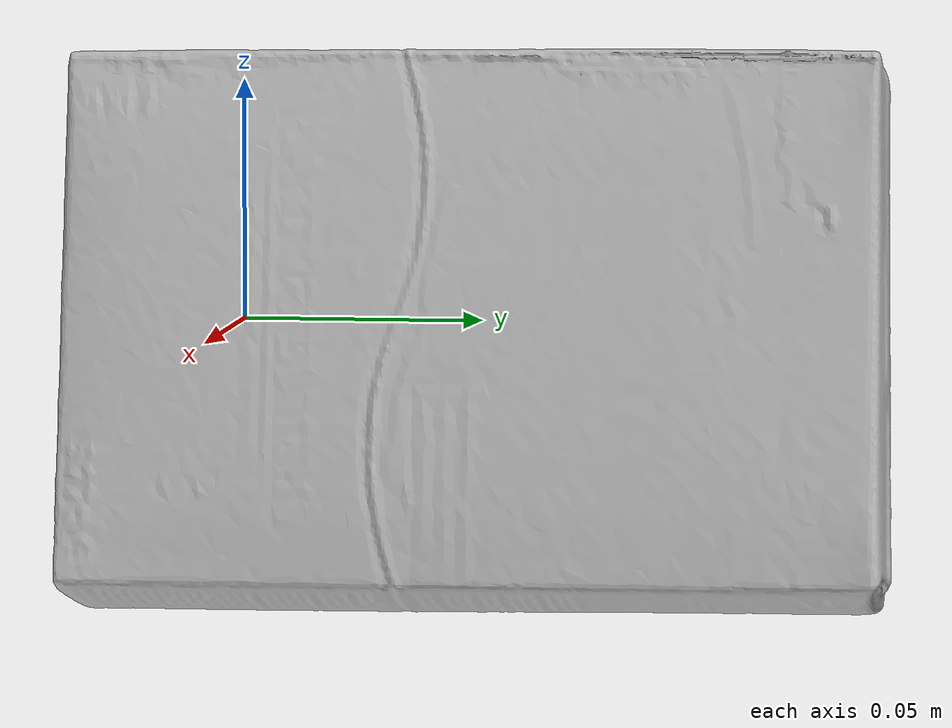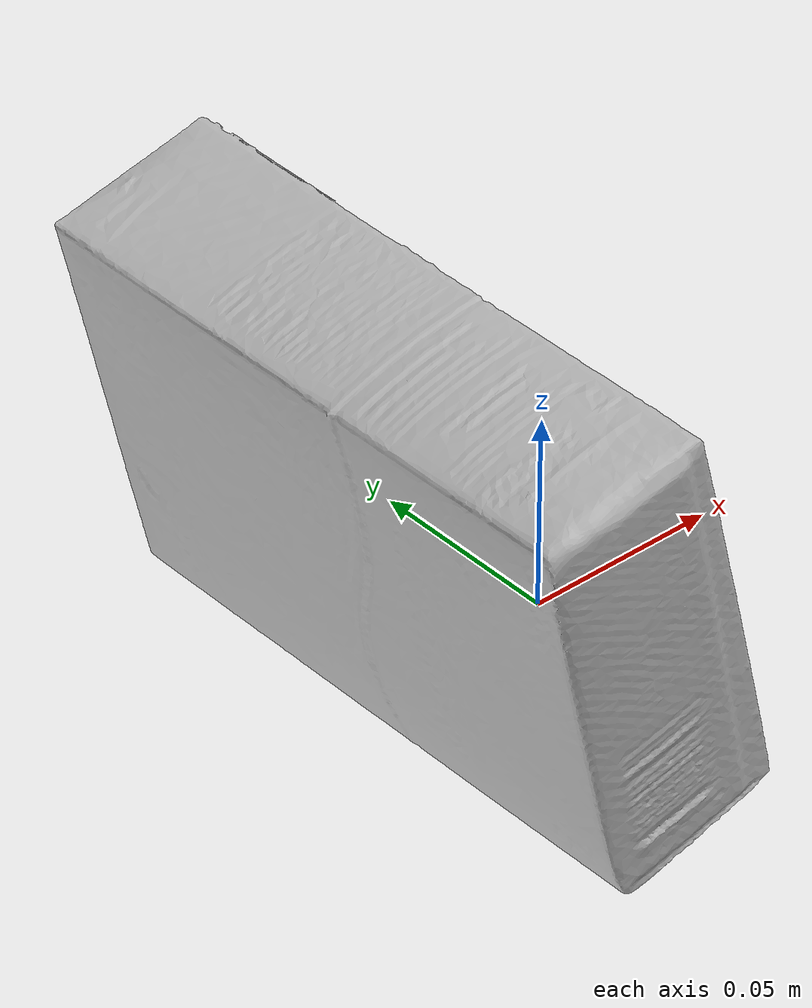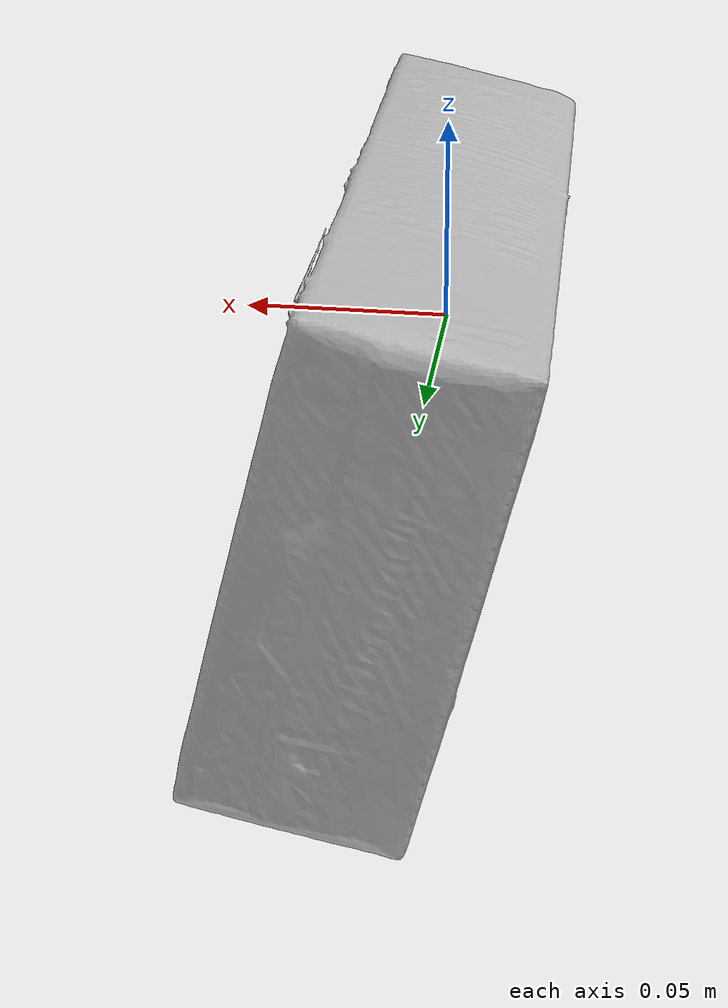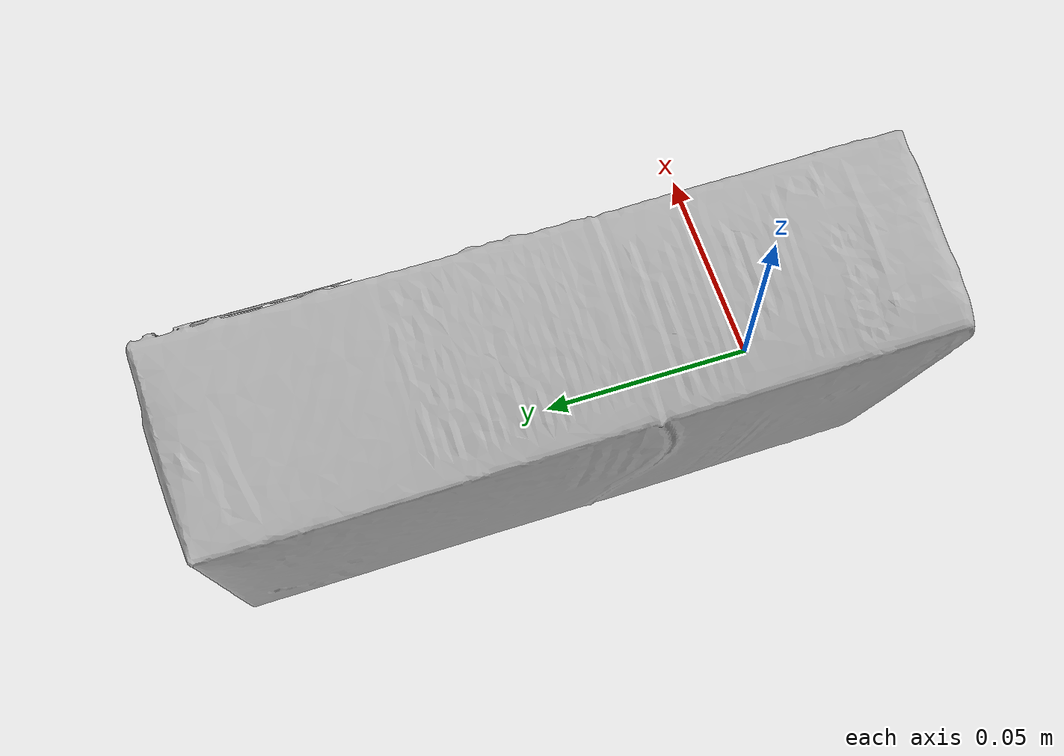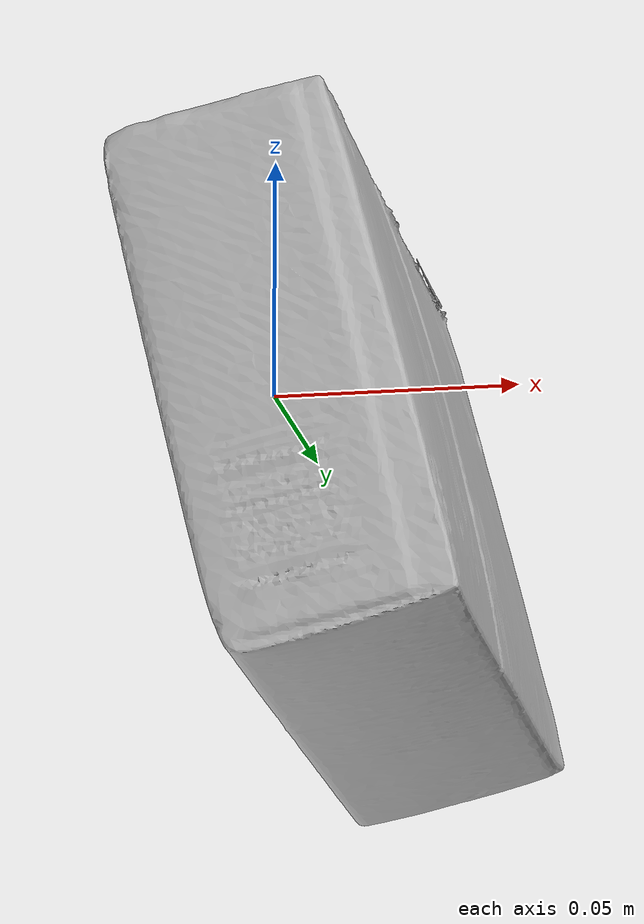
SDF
<?xml version='1.0'?>
<sdf version="1.4">
  <model name="PotatoeStarch">
    <static>false</static>
    <link name="link">
      <inertial>
        <pose>0.005502763584714802 0.0494479236310961 -0.002324127998624234 1.5654622189342196 0.2389639333719213 -3.138492345087517</pose>
        <mass>0.09599788806693478</mass>
        <inertia>
          <ixx>0.00032726995458187696</ixx>
          <ixy>-3.6128091057939784e-20</ixy>
          <ixz>-2.679990728348585e-20</ixz>
          <iyy>0.0002465402178994895</iyy>
          <iyz>9.75389018291768e-20</iyz>
          <izz>0.00012035708912454016</izz>
        </inertia>
      </inertial>
      <collision name="collision">
        <geometry>
          <mesh>
            <!-- Use a downsampled mesh for collisions -->
            <uri>model:///PotatoeStarch/PotatoeStarch_250_collision.obj</uri>
	        </mesh>
        </geometry>
        <surface>
      </surface>
      </collision>
      <visual name="visual">
        <geometry>
          <mesh>
            <uri>model:///PotatoeStarch/PotatoeStarch_25k_tex.obj</uri>
	        </mesh>
        </geometry>
        <material>
          <script>
            <uri>model:///PotatoeStarch/PotatoeStarch.material</uri>
            <name>PotatoeStarch</name>
          </script>
        </material>
      </visual>
    </link>
  </model>
</sdf>
